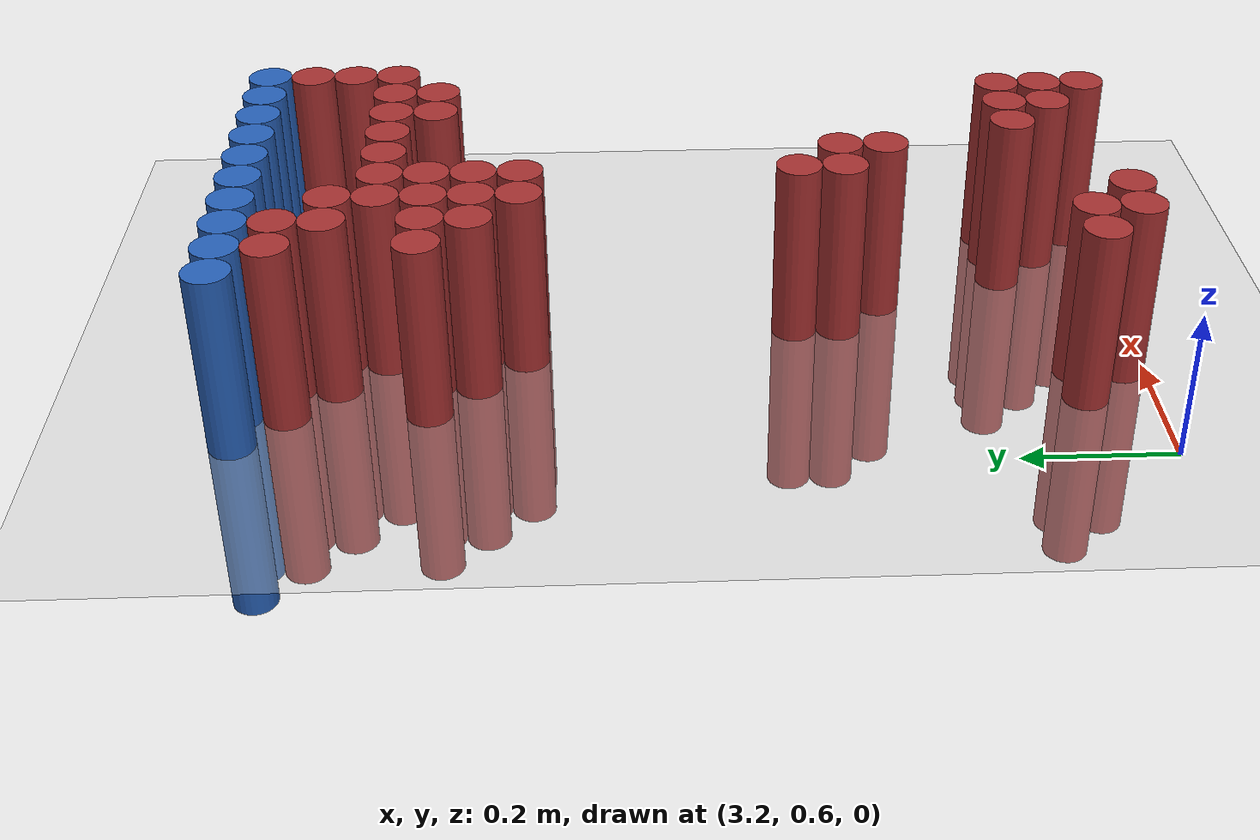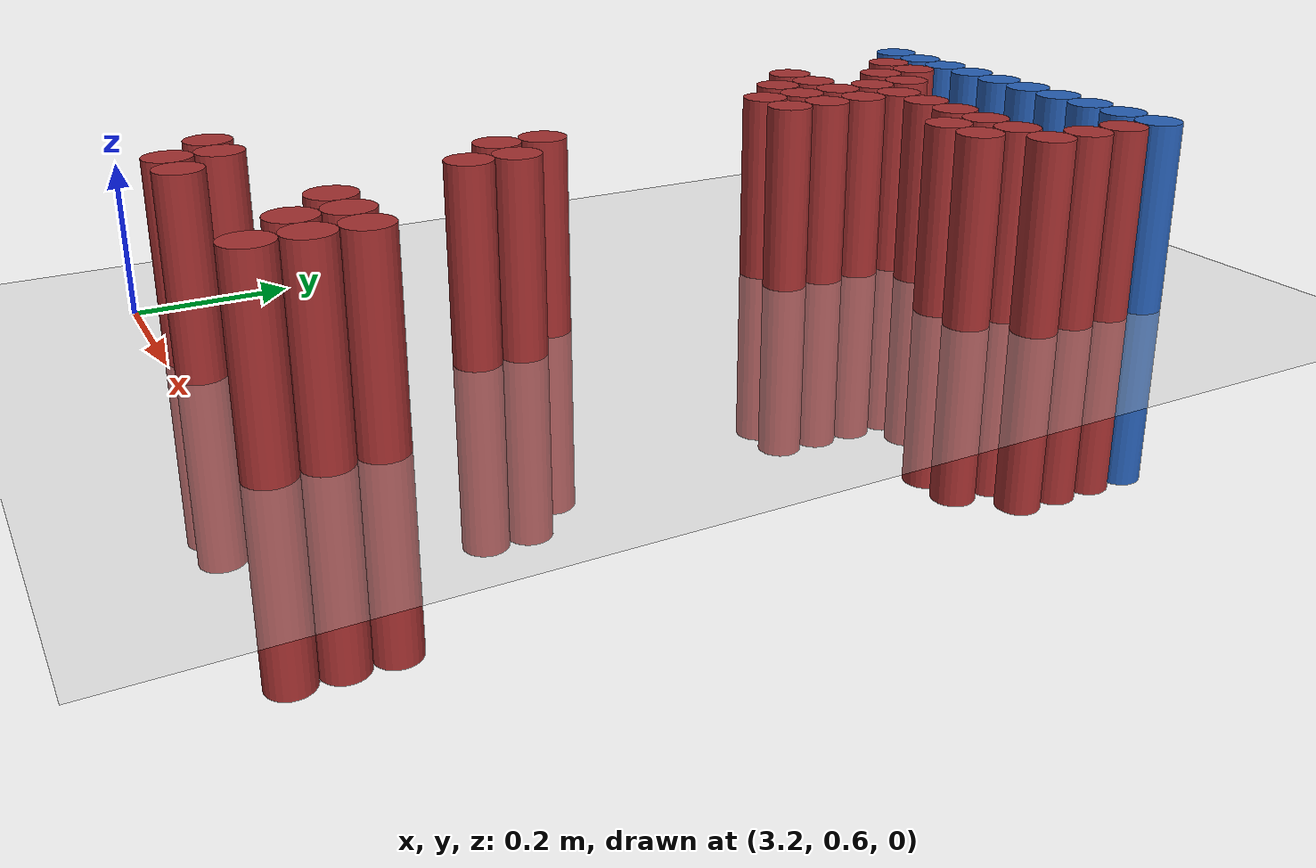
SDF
<sdf version="1.6">
 <world name="default">
  <model name="ground_plane">
   <static>1</static>
   <link name="link">
    <collision name="collision">
     <geometry><plane><normal>0 0 1</normal><size>100 100</size></plane></geometry>
     <surface><friction><ode><mu>100</mu><mu2>50</mu2></ode></friction></surface>
    </collision>
    <visual name="visual">
     <cast_shadows>0</cast_shadows>
     <geometry><plane><normal>0 0 1</normal><size>100 100</size></plane></geometry>
     <material>
      <script><uri>file://media/materials/scripts/gazebo.material</uri><name>Gazebo/Grey</name></script>
     </material>
    </visual>
   </link>
  </model>
  <model name="unit_cylinder_115">
   <static>1</static>
   <pose>3.270000 1.770000 0.000000 0.000000 0.000000 0.000000</pose>
   <link name="link">
    <inertial>
     <mass>1</mass>
     <inertia><ixx>0.145833</ixx><ixy>0</ixy><ixz>0</ixz><iyy>0.145833</iyy><iyz>0</iyz><izz>0.125</izz></inertia>
    </inertial>
    <collision name="collision">
     <geometry><cylinder><radius>0.030000</radius><length>0.5</length></cylinder></geometry>
    </collision>
    <visual name="visual">
     <geometry><cylinder><radius>0.030000</radius><length>0.5</length></cylinder></geometry>
     <material>
      <ambient>0.152000 0.379000 0.720000 1</ambient>
      <diffuse>0.152000 0.379000 0.720000 1</diffuse>
     </material>
     <material>
      <script><name>Gazebo/Grey</name><uri>file://media/materials/scripts/gazebo.material</uri></script>
     </material>
    </visual>
   </link>
  </model>
  <model name="unit_cylinder_116">
   <static>1</static>
   <pose>3.330000 1.770000 0.000000 0.000000 0.000000 0.000000</pose>
   <link name="link">
    <inertial>
     <mass>1</mass>
     <inertia><ixx>0.145833</ixx><ixy>0</ixy><ixz>0</ixz><iyy>0.145833</iyy><iyz>0</iyz><izz>0.125</izz></inertia>
    </inertial>
    <collision name="collision">
     <geometry><cylinder><radius>0.030000</radius><length>0.5</length></cylinder></geometry>
    </collision>
    <visual name="visual">
     <geometry><cylinder><radius>0.030000</radius><length>0.5</length></cylinder></geometry>
     <material>
      <ambient>0.152000 0.379000 0.720000 1</ambient>
      <diffuse>0.152000 0.379000 0.720000 1</diffuse>
     </material>
     <material>
      <script><name>Gazebo/Grey</name><uri>file://media/materials/scripts/gazebo.material</uri></script>
     </material>
    </visual>
   </link>
  </model>
  <model name="unit_cylinder_117">
   <static>1</static>
   <pose>3.390000 1.770000 0.000000 0.000000 0.000000 0.000000</pose>
   <link name="link">
    <inertial>
     <mass>1</mass>
     <inertia><ixx>0.145833</ixx><ixy>0</ixy><ixz>0</ixz><iyy>0.145833</iyy><iyz>0</iyz><izz>0.125</izz></inertia>
    </inertial>
    <collision name="collision">
     <geometry><cylinder><radius>0.030000</radius><length>0.5</length></cylinder></geometry>
    </collision>
    <visual name="visual">
     <geometry><cylinder><radius>0.030000</radius><length>0.5</length></cylinder></geometry>
     <material>
      <ambient>0.152000 0.379000 0.720000 1</ambient>
      <diffuse>0.152000 0.379000 0.720000 1</diffuse>
     </material>
     <material>
      <script><name>Gazebo/Grey</name><uri>file://media/materials/scripts/gazebo.material</uri></script>
     </material>
    </visual>
   </link>
  </model>
  <model name="unit_cylinder_118">
   <static>1</static>
   <pose>3.450000 1.770000 0.000000 0.000000 0.000000 0.000000</pose>
   <link name="link">
    <inertial>
     <mass>1</mass>
     <inertia><ixx>0.145833</ixx><ixy>0</ixy><ixz>0</ixz><iyy>0.145833</iyy><iyz>0</iyz><izz>0.125</izz></inertia>
    </inertial>
    <collision name="collision">
     <geometry><cylinder><radius>0.030000</radius><length>0.5</length></cylinder></geometry>
    </collision>
    <visual name="visual">
     <geometry><cylinder><radius>0.030000</radius><length>0.5</length></cylinder></geometry>
     <material>
      <ambient>0.152000 0.379000 0.720000 1</ambient>
      <diffuse>0.152000 0.379000 0.720000 1</diffuse>
     </material>
     <material>
      <script><name>Gazebo/Grey</name><uri>file://media/materials/scripts/gazebo.material</uri></script>
     </material>
    </visual>
   </link>
  </model>
  <model name="unit_cylinder_119">
   <static>1</static>
   <pose>3.510000 1.770000 0.000000 0.000000 0.000000 0.000000</pose>
   <link name="link">
    <inertial>
     <mass>1</mass>
     <inertia><ixx>0.145833</ixx><ixy>0</ixy><ixz>0</ixz><iyy>0.145833</iyy><iyz>0</iyz><izz>0.125</izz></inertia>
    </inertial>
    <collision name="collision">
     <geometry><cylinder><radius>0.030000</radius><length>0.5</length></cylinder></geometry>
    </collision>
    <visual name="visual">
     <geometry><cylinder><radius>0.030000</radius><length>0.5</length></cylinder></geometry>
     <material>
      <ambient>0.152000 0.379000 0.720000 1</ambient>
      <diffuse>0.152000 0.379000 0.720000 1</diffuse>
     </material>
     <material>
      <script><name>Gazebo/Grey</name><uri>file://media/materials/scripts/gazebo.material</uri></script>
     </material>
    </visual>
   </link>
  </model>
  <model name="unit_cylinder_120">
   <static>1</static>
   <pose>3.570000 1.770000 0.000000 0.000000 0.000000 0.000000</pose>
   <link name="link">
    <inertial>
     <mass>1</mass>
     <inertia><ixx>0.145833</ixx><ixy>0</ixy><ixz>0</ixz><iyy>0.145833</iyy><iyz>0</iyz><izz>0.125</izz></inertia>
    </inertial>
    <collision name="collision">
     <geometry><cylinder><radius>0.030000</radius><length>0.5</length></cylinder></geometry>
    </collision>
    <visual name="visual">
     <geometry><cylinder><radius>0.030000</radius><length>0.5</length></cylinder></geometry>
     <material>
      <ambient>0.152000 0.379000 0.720000 1</ambient>
      <diffuse>0.152000 0.379000 0.720000 1</diffuse>
     </material>
     <material>
      <script><name>Gazebo/Grey</name><uri>file://media/materials/scripts/gazebo.material</uri></script>
     </material>
    </visual>
   </link>
  </model>
  <model name="unit_cylinder_121">
   <static>1</static>
   <pose>3.630000 1.770000 0.000000 0.000000 0.000000 0.000000</pose>
   <link name="link">
    <inertial>
     <mass>1</mass>
     <inertia><ixx>0.145833</ixx><ixy>0</ixy><ixz>0</ixz><iyy>0.145833</iyy><iyz>0</iyz><izz>0.125</izz></inertia>
    </inertial>
    <collision name="collision">
     <geometry><cylinder><radius>0.030000</radius><length>0.5</length></cylinder></geometry>
    </collision>
    <visual name="visual">
     <geometry><cylinder><radius>0.030000</radius><length>0.5</length></cylinder></geometry>
     <material>
      <ambient>0.152000 0.379000 0.720000 1</ambient>
      <diffuse>0.152000 0.379000 0.720000 1</diffuse>
     </material>
     <material>
      <script><name>Gazebo/Grey</name><uri>file://media/materials/scripts/gazebo.material</uri></script>
     </material>
    </visual>
   </link>
  </model>
  <model name="unit_cylinder_122">
   <static>1</static>
   <pose>3.690000 1.770000 0.000000 0.000000 0.000000 0.000000</pose>
   <link name="link">
    <inertial>
     <mass>1</mass>
     <inertia><ixx>0.145833</ixx><ixy>0</ixy><ixz>0</ixz><iyy>0.145833</iyy><iyz>0</iyz><izz>0.125</izz></inertia>
    </inertial>
    <collision name="collision">
     <geometry><cylinder><radius>0.030000</radius><length>0.5</length></cylinder></geometry>
    </collision>
    <visual name="visual">
     <geometry><cylinder><radius>0.030000</radius><length>0.5</length></cylinder></geometry>
     <material>
      <ambient>0.152000 0.379000 0.720000 1</ambient>
      <diffuse>0.152000 0.379000 0.720000 1</diffuse>
     </material>
     <material>
      <script><name>Gazebo/Grey</name><uri>file://media/materials/scripts/gazebo.material</uri></script>
     </material>
    </visual>
   </link>
  </model>
  <model name="unit_cylinder_123">
   <static>1</static>
   <pose>3.750000 1.770000 0.000000 0.000000 0.000000 0.000000</pose>
   <link name="link">
    <inertial>
     <mass>1</mass>
     <inertia><ixx>0.145833</ixx><ixy>0</ixy><ixz>0</ixz><iyy>0.145833</iyy><iyz>0</iyz><izz>0.125</izz></inertia>
    </inertial>
    <collision name="collision">
     <geometry><cylinder><radius>0.030000</radius><length>0.5</length></cylinder></geometry>
    </collision>
    <visual name="visual">
     <geometry><cylinder><radius>0.030000</radius><length>0.5</length></cylinder></geometry>
     <material>
      <ambient>0.152000 0.379000 0.720000 1</ambient>
      <diffuse>0.152000 0.379000 0.720000 1</diffuse>
     </material>
     <material>
      <script><name>Gazebo/Grey</name><uri>file://media/materials/scripts/gazebo.material</uri></script>
     </material>
    </visual>
   </link>
  </model>
  <model name="unit_cylinder_124">
   <static>1</static>
   <pose>3.810000 1.770000 0.000000 0.000000 0.000000 0.000000</pose>
   <link name="link">
    <inertial>
     <mass>1</mass>
     <inertia><ixx>0.145833</ixx><ixy>0</ixy><ixz>0</ixz><iyy>0.145833</iyy><iyz>0</iyz><izz>0.125</izz></inertia>
    </inertial>
    <collision name="collision">
     <geometry><cylinder><radius>0.030000</radius><length>0.5</length></cylinder></geometry>
    </collision>
    <visual name="visual">
     <geometry><cylinder><radius>0.030000</radius><length>0.5</length></cylinder></geometry>
     <material>
      <ambient>0.152000 0.379000 0.720000 1</ambient>
      <diffuse>0.152000 0.379000 0.720000 1</diffuse>
     </material>
     <material>
      <script><name>Gazebo/Grey</name><uri>file://media/materials/scripts/gazebo.material</uri></script>
     </material>
    </visual>
   </link>
  </model>
  <model name="unit_cylinder_138">
   <static>1</static>
   <pose>3.330000 1.710000 0.000000 0.000000 0.000000 0.000000</pose>
   <link name="link">
    <inertial>
     <mass>1</mass>
     <inertia><ixx>0.145833</ixx><ixy>0</ixy><ixz>0</ixz><iyy>0.145833</iyy><iyz>0</iyz><izz>0.125</izz></inertia>
    </inertial>
    <collision name="collision">
     <geometry><cylinder><radius>0.030000</radius><length>0.5</length></cylinder></geometry>
    </collision>
    <visual name="visual">
     <geometry><cylinder><radius>0.030000</radius><length>0.5</length></cylinder></geometry>
     <material>
      <ambient>0.648000 0.192000 0.192000 1</ambient>
      <diffuse>0.648000 0.192000 0.192000 1</diffuse>
     </material>
     <material>
      <script><name>Gazebo/Grey</name><uri>file://media/materials/scripts/gazebo.material</uri></script>
     </material>
    </visual>
   </link>
  </model>
  <model name="unit_cylinder_139">
   <static>1</static>
   <pose>3.390000 1.710000 0.000000 0.000000 0.000000 0.000000</pose>
   <link name="link">
    <inertial>
     <mass>1</mass>
     <inertia><ixx>0.145833</ixx><ixy>0</ixy><ixz>0</ixz><iyy>0.145833</iyy><iyz>0</iyz><izz>0.125</izz></inertia>
    </inertial>
    <collision name="collision">
     <geometry><cylinder><radius>0.030000</radius><length>0.5</length></cylinder></geometry>
    </collision>
    <visual name="visual">
     <geometry><cylinder><radius>0.030000</radius><length>0.5</length></cylinder></geometry>
     <material>
      <ambient>0.648000 0.192000 0.192000 1</ambient>
      <diffuse>0.648000 0.192000 0.192000 1</diffuse>
     </material>
     <material>
      <script><name>Gazebo/Grey</name><uri>file://media/materials/scripts/gazebo.material</uri></script>
     </material>
    </visual>
   </link>
  </model>
  <model name="unit_cylinder_140">
   <static>1</static>
   <pose>3.810000 1.710000 0.000000 0.000000 0.000000 0.000000</pose>
   <link name="link">
    <inertial>
     <mass>1</mass>
     <inertia><ixx>0.145833</ixx><ixy>0</ixy><ixz>0</ixz><iyy>0.145833</iyy><iyz>0</iyz><izz>0.125</izz></inertia>
    </inertial>
    <collision name="collision">
     <geometry><cylinder><radius>0.030000</radius><length>0.5</length></cylinder></geometry>
    </collision>
    <visual name="visual">
     <geometry><cylinder><radius>0.030000</radius><length>0.5</length></cylinder></geometry>
     <material>
      <ambient>0.648000 0.192000 0.192000 1</ambient>
      <diffuse>0.648000 0.192000 0.192000 1</diffuse>
     </material>
     <material>
      <script><name>Gazebo/Grey</name><uri>file://media/materials/scripts/gazebo.material</uri></script>
     </material>
    </visual>
   </link>
  </model>
  <model name="unit_cylinder_150">
   <static>1</static>
   <pose>3.390000 1.650000 0.000000 0.000000 0.000000 0.000000</pose>
   <link name="link">
    <inertial>
     <mass>1</mass>
     <inertia><ixx>0.145833</ixx><ixy>0</ixy><ixz>0</ixz><iyy>0.145833</iyy><iyz>0</iyz><izz>0.125</izz></inertia>
    </inertial>
    <collision name="collision">
     <geometry><cylinder><radius>0.030000</radius><length>0.5</length></cylinder></geometry>
    </collision>
    <visual name="visual">
     <geometry><cylinder><radius>0.030000</radius><length>0.5</length></cylinder></geometry>
     <material>
      <ambient>0.648000 0.192000 0.192000 1</ambient>
      <diffuse>0.648000 0.192000 0.192000 1</diffuse>
     </material>
     <material>
      <script><name>Gazebo/Grey</name><uri>file://media/materials/scripts/gazebo.material</uri></script>
     </material>
    </visual>
   </link>
  </model>
  <model name="unit_cylinder_151">
   <static>1</static>
   <pose>3.450000 1.650000 0.000000 0.000000 0.000000 0.000000</pose>
   <link name="link">
    <inertial>
     <mass>1</mass>
     <inertia><ixx>0.145833</ixx><ixy>0</ixy><ixz>0</ixz><iyy>0.145833</iyy><iyz>0</iyz><izz>0.125</izz></inertia>
    </inertial>
    <collision name="collision">
     <geometry><cylinder><radius>0.030000</radius><length>0.5</length></cylinder></geometry>
    </collision>
    <visual name="visual">
     <geometry><cylinder><radius>0.030000</radius><length>0.5</length></cylinder></geometry>
     <material>
      <ambient>0.648000 0.192000 0.192000 1</ambient>
      <diffuse>0.648000 0.192000 0.192000 1</diffuse>
     </material>
     <material>
      <script><name>Gazebo/Grey</name><uri>file://media/materials/scripts/gazebo.material</uri></script>
     </material>
    </visual>
   </link>
  </model>
  <model name="unit_cylinder_152">
   <static>1</static>
   <pose>3.810000 1.650000 0.000000 0.000000 0.000000 0.000000</pose>
   <link name="link">
    <inertial>
     <mass>1</mass>
     <inertia><ixx>0.145833</ixx><ixy>0</ixy><ixz>0</ixz><iyy>0.145833</iyy><iyz>0</iyz><izz>0.125</izz></inertia>
    </inertial>
    <collision name="collision">
     <geometry><cylinder><radius>0.030000</radius><length>0.5</length></cylinder></geometry>
    </collision>
    <visual name="visual">
     <geometry><cylinder><radius>0.030000</radius><length>0.5</length></cylinder></geometry>
     <material>
      <ambient>0.648000 0.192000 0.192000 1</ambient>
      <diffuse>0.648000 0.192000 0.192000 1</diffuse>
     </material>
     <material>
      <script><name>Gazebo/Grey</name><uri>file://media/materials/scripts/gazebo.material</uri></script>
     </material>
    </visual>
   </link>
  </model>
  <model name="unit_cylinder_157">
   <static>1</static>
   <pose>3.450000 1.590000 0.000000 0.000000 0.000000 0.000000</pose>
   <link name="link">
    <inertial>
     <mass>1</mass>
     <inertia><ixx>0.145833</ixx><ixy>0</ixy><ixz>0</ixz><iyy>0.145833</iyy><iyz>0</iyz><izz>0.125</izz></inertia>
    </inertial>
    <collision name="collision">
     <geometry><cylinder><radius>0.030000</radius><length>0.5</length></cylinder></geometry>
    </collision>
    <visual name="visual">
     <geometry><cylinder><radius>0.030000</radius><length>0.5</length></cylinder></geometry>
     <material>
      <ambient>0.648000 0.192000 0.192000 1</ambient>
      <diffuse>0.648000 0.192000 0.192000 1</diffuse>
     </material>
     <material>
      <script><name>Gazebo/Grey</name><uri>file://media/materials/scripts/gazebo.material</uri></script>
     </material>
    </visual>
   </link>
  </model>
  <model name="unit_cylinder_158">
   <static>1</static>
   <pose>3.510000 1.590000 0.000000 0.000000 0.000000 0.000000</pose>
   <link name="link">
    <inertial>
     <mass>1</mass>
     <inertia><ixx>0.145833</ixx><ixy>0</ixy><ixz>0</ixz><iyy>0.145833</iyy><iyz>0</iyz><izz>0.125</izz></inertia>
    </inertial>
    <collision name="collision">
     <geometry><cylinder><radius>0.030000</radius><length>0.5</length></cylinder></geometry>
    </collision>
    <visual name="visual">
     <geometry><cylinder><radius>0.030000</radius><length>0.5</length></cylinder></geometry>
     <material>
      <ambient>0.648000 0.192000 0.192000 1</ambient>
      <diffuse>0.648000 0.192000 0.192000 1</diffuse>
     </material>
     <material>
      <script><name>Gazebo/Grey</name><uri>file://media/materials/scripts/gazebo.material</uri></script>
     </material>
    </visual>
   </link>
  </model>
  <model name="unit_cylinder_159">
   <static>1</static>
   <pose>3.570000 1.590000 0.000000 0.000000 0.000000 0.000000</pose>
   <link name="link">
    <inertial>
     <mass>1</mass>
     <inertia><ixx>0.145833</ixx><ixy>0</ixy><ixz>0</ixz><iyy>0.145833</iyy><iyz>0</iyz><izz>0.125</izz></inertia>
    </inertial>
    <collision name="collision">
     <geometry><cylinder><radius>0.030000</radius><length>0.5</length></cylinder></geometry>
    </collision>
    <visual name="visual">
     <geometry><cylinder><radius>0.030000</radius><length>0.5</length></cylinder></geometry>
     <material>
      <ambient>0.648000 0.192000 0.192000 1</ambient>
      <diffuse>0.648000 0.192000 0.192000 1</diffuse>
     </material>
     <material>
      <script><name>Gazebo/Grey</name><uri>file://media/materials/scripts/gazebo.material</uri></script>
     </material>
    </visual>
   </link>
  </model>
  <model name="unit_cylinder_160">
   <static>1</static>
   <pose>3.630000 1.590000 0.000000 0.000000 0.000000 0.000000</pose>
   <link name="link">
    <inertial>
     <mass>1</mass>
     <inertia><ixx>0.145833</ixx><ixy>0</ixy><ixz>0</ixz><iyy>0.145833</iyy><iyz>0</iyz><izz>0.125</izz></inertia>
    </inertial>
    <collision name="collision">
     <geometry><cylinder><radius>0.030000</radius><length>0.5</length></cylinder></geometry>
    </collision>
    <visual name="visual">
     <geometry><cylinder><radius>0.030000</radius><length>0.5</length></cylinder></geometry>
     <material>
      <ambient>0.648000 0.192000 0.192000 1</ambient>
      <diffuse>0.648000 0.192000 0.192000 1</diffuse>
     </material>
     <material>
      <script><name>Gazebo/Grey</name><uri>file://media/materials/scripts/gazebo.material</uri></script>
     </material>
    </visual>
   </link>
  </model>
  <model name="unit_cylinder_161">
   <static>1</static>
   <pose>3.690000 1.590000 0.000000 0.000000 0.000000 0.000000</pose>
   <link name="link">
    <inertial>
     <mass>1</mass>
     <inertia><ixx>0.145833</ixx><ixy>0</ixy><ixz>0</ixz><iyy>0.145833</iyy><iyz>0</iyz><izz>0.125</izz></inertia>
    </inertial>
    <collision name="collision">
     <geometry><cylinder><radius>0.030000</radius><length>0.5</length></cylinder></geometry>
    </collision>
    <visual name="visual">
     <geometry><cylinder><radius>0.030000</radius><length>0.5</length></cylinder></geometry>
     <material>
      <ambient>0.648000 0.192000 0.192000 1</ambient>
      <diffuse>0.648000 0.192000 0.192000 1</diffuse>
     </material>
     <material>
      <script><name>Gazebo/Grey</name><uri>file://media/materials/scripts/gazebo.material</uri></script>
     </material>
    </visual>
   </link>
  </model>
  <model name="unit_cylinder_162">
   <static>1</static>
   <pose>3.750000 1.590000 0.000000 0.000000 0.000000 0.000000</pose>
   <link name="link">
    <inertial>
     <mass>1</mass>
     <inertia><ixx>0.145833</ixx><ixy>0</ixy><ixz>0</ixz><iyy>0.145833</iyy><iyz>0</iyz><izz>0.125</izz></inertia>
    </inertial>
    <collision name="collision">
     <geometry><cylinder><radius>0.030000</radius><length>0.5</length></cylinder></geometry>
    </collision>
    <visual name="visual">
     <geometry><cylinder><radius>0.030000</radius><length>0.5</length></cylinder></geometry>
     <material>
      <ambient>0.648000 0.192000 0.192000 1</ambient>
      <diffuse>0.648000 0.192000 0.192000 1</diffuse>
     </material>
     <material>
      <script><name>Gazebo/Grey</name><uri>file://media/materials/scripts/gazebo.material</uri></script>
     </material>
    </visual>
   </link>
  </model>
  <model name="unit_cylinder_163">
   <static>1</static>
   <pose>3.810000 1.590000 0.000000 0.000000 0.000000 0.000000</pose>
   <link name="link">
    <inertial>
     <mass>1</mass>
     <inertia><ixx>0.145833</ixx><ixy>0</ixy><ixz>0</ixz><iyy>0.145833</iyy><iyz>0</iyz><izz>0.125</izz></inertia>
    </inertial>
    <collision name="collision">
     <geometry><cylinder><radius>0.030000</radius><length>0.5</length></cylinder></geometry>
    </collision>
    <visual name="visual">
     <geometry><cylinder><radius>0.030000</radius><length>0.5</length></cylinder></geometry>
     <material>
      <ambient>0.648000 0.192000 0.192000 1</ambient>
      <diffuse>0.648000 0.192000 0.192000 1</diffuse>
     </material>
     <material>
      <script><name>Gazebo/Grey</name><uri>file://media/materials/scripts/gazebo.material</uri></script>
     </material>
    </visual>
   </link>
  </model>
  <model name="unit_cylinder_165">
   <static>1</static>
   <pose>3.330000 1.530000 0.000000 0.000000 0.000000 0.000000</pose>
   <link name="link">
    <inertial>
     <mass>1</mass>
     <inertia><ixx>0.145833</ixx><ixy>0</ixy><ixz>0</ixz><iyy>0.145833</iyy><iyz>0</iyz><izz>0.125</izz></inertia>
    </inertial>
    <collision name="collision">
     <geometry><cylinder><radius>0.030000</radius><length>0.5</length></cylinder></geometry>
    </collision>
    <visual name="visual">
     <geometry><cylinder><radius>0.030000</radius><length>0.5</length></cylinder></geometry>
     <material>
      <ambient>0.648000 0.192000 0.192000 1</ambient>
      <diffuse>0.648000 0.192000 0.192000 1</diffuse>
     </material>
     <material>
      <script><name>Gazebo/Grey</name><uri>file://media/materials/scripts/gazebo.material</uri></script>
     </material>
    </visual>
   </link>
  </model>
  <model name="unit_cylinder_166">
   <static>1</static>
   <pose>3.390000 1.530000 0.000000 0.000000 0.000000 0.000000</pose>
   <link name="link">
    <inertial>
     <mass>1</mass>
     <inertia><ixx>0.145833</ixx><ixy>0</ixy><ixz>0</ixz><iyy>0.145833</iyy><iyz>0</iyz><izz>0.125</izz></inertia>
    </inertial>
    <collision name="collision">
     <geometry><cylinder><radius>0.030000</radius><length>0.5</length></cylinder></geometry>
    </collision>
    <visual name="visual">
     <geometry><cylinder><radius>0.030000</radius><length>0.5</length></cylinder></geometry>
     <material>
      <ambient>0.648000 0.192000 0.192000 1</ambient>
      <diffuse>0.648000 0.192000 0.192000 1</diffuse>
     </material>
     <material>
      <script><name>Gazebo/Grey</name><uri>file://media/materials/scripts/gazebo.material</uri></script>
     </material>
    </visual>
   </link>
  </model>
  <model name="unit_cylinder_167">
   <static>1</static>
   <pose>3.450000 1.530000 0.000000 0.000000 0.000000 0.000000</pose>
   <link name="link">
    <inertial>
     <mass>1</mass>
     <inertia><ixx>0.145833</ixx><ixy>0</ixy><ixz>0</ixz><iyy>0.145833</iyy><iyz>0</iyz><izz>0.125</izz></inertia>
    </inertial>
    <collision name="collision">
     <geometry><cylinder><radius>0.030000</radius><length>0.5</length></cylinder></geometry>
    </collision>
    <visual name="visual">
     <geometry><cylinder><radius>0.030000</radius><length>0.5</length></cylinder></geometry>
     <material>
      <ambient>0.648000 0.192000 0.192000 1</ambient>
      <diffuse>0.648000 0.192000 0.192000 1</diffuse>
     </material>
     <material>
      <script><name>Gazebo/Grey</name><uri>file://media/materials/scripts/gazebo.material</uri></script>
     </material>
    </visual>
   </link>
  </model>
  <model name="unit_cylinder_168">
   <static>1</static>
   <pose>3.510000 1.530000 0.000000 0.000000 0.000000 0.000000</pose>
   <link name="link">
    <inertial>
     <mass>1</mass>
     <inertia><ixx>0.145833</ixx><ixy>0</ixy><ixz>0</ixz><iyy>0.145833</iyy><iyz>0</iyz><izz>0.125</izz></inertia>
    </inertial>
    <collision name="collision">
     <geometry><cylinder><radius>0.030000</radius><length>0.5</length></cylinder></geometry>
    </collision>
    <visual name="visual">
     <geometry><cylinder><radius>0.030000</radius><length>0.5</length></cylinder></geometry>
     <material>
      <ambient>0.648000 0.192000 0.192000 1</ambient>
      <diffuse>0.648000 0.192000 0.192000 1</diffuse>
     </material>
     <material>
      <script><name>Gazebo/Grey</name><uri>file://media/materials/scripts/gazebo.material</uri></script>
     </material>
    </visual>
   </link>
  </model>
  <model name="unit_cylinder_169">
   <static>1</static>
   <pose>3.690000 1.530000 0.000000 0.000000 0.000000 0.000000</pose>
   <link name="link">
    <inertial>
     <mass>1</mass>
     <inertia><ixx>0.145833</ixx><ixy>0</ixy><ixz>0</ixz><iyy>0.145833</iyy><iyz>0</iyz><izz>0.125</izz></inertia>
    </inertial>
    <collision name="collision">
     <geometry><cylinder><radius>0.030000</radius><length>0.5</length></cylinder></geometry>
    </collision>
    <visual name="visual">
     <geometry><cylinder><radius>0.030000</radius><length>0.5</length></cylinder></geometry>
     <material>
      <ambient>0.648000 0.192000 0.192000 1</ambient>
      <diffuse>0.648000 0.192000 0.192000 1</diffuse>
     </material>
     <material>
      <script><name>Gazebo/Grey</name><uri>file://media/materials/scripts/gazebo.material</uri></script>
     </material>
    </visual>
   </link>
  </model>
  <model name="unit_cylinder_170">
   <static>1</static>
   <pose>3.750000 1.530000 0.000000 0.000000 0.000000 0.000000</pose>
   <link name="link">
    <inertial>
     <mass>1</mass>
     <inertia><ixx>0.145833</ixx><ixy>0</ixy><ixz>0</ixz><iyy>0.145833</iyy><iyz>0</iyz><izz>0.125</izz></inertia>
    </inertial>
    <collision name="collision">
     <geometry><cylinder><radius>0.030000</radius><length>0.5</length></cylinder></geometry>
    </collision>
    <visual name="visual">
     <geometry><cylinder><radius>0.030000</radius><length>0.5</length></cylinder></geometry>
     <material>
      <ambient>0.648000 0.192000 0.192000 1</ambient>
      <diffuse>0.648000 0.192000 0.192000 1</diffuse>
     </material>
     <material>
      <script><name>Gazebo/Grey</name><uri>file://media/materials/scripts/gazebo.material</uri></script>
     </material>
    </visual>
   </link>
  </model>
  <model name="unit_cylinder_171">
   <static>1</static>
   <pose>3.390000 1.470000 0.000000 0.000000 0.000000 0.000000</pose>
   <link name="link">
    <inertial>
     <mass>1</mass>
     <inertia><ixx>0.145833</ixx><ixy>0</ixy><ixz>0</ixz><iyy>0.145833</iyy><iyz>0</iyz><izz>0.125</izz></inertia>
    </inertial>
    <collision name="collision">
     <geometry><cylinder><radius>0.030000</radius><length>0.5</length></cylinder></geometry>
    </collision>
    <visual name="visual">
     <geometry><cylinder><radius>0.030000</radius><length>0.5</length></cylinder></geometry>
     <material>
      <ambient>0.648000 0.192000 0.192000 1</ambient>
      <diffuse>0.648000 0.192000 0.192000 1</diffuse>
     </material>
     <material>
      <script><name>Gazebo/Grey</name><uri>file://media/materials/scripts/gazebo.material</uri></script>
     </material>
    </visual>
   </link>
  </model>
  <model name="unit_cylinder_172">
   <static>1</static>
   <pose>3.450000 1.470000 0.000000 0.000000 0.000000 0.000000</pose>
   <link name="link">
    <inertial>
     <mass>1</mass>
     <inertia><ixx>0.145833</ixx><ixy>0</ixy><ixz>0</ixz><iyy>0.145833</iyy><iyz>0</iyz><izz>0.125</izz></inertia>
    </inertial>
    <collision name="collision">
     <geometry><cylinder><radius>0.030000</radius><length>0.5</length></cylinder></geometry>
    </collision>
    <visual name="visual">
     <geometry><cylinder><radius>0.030000</radius><length>0.5</length></cylinder></geometry>
     <material>
      <ambient>0.648000 0.192000 0.192000 1</ambient>
      <diffuse>0.648000 0.192000 0.192000 1</diffuse>
     </material>
     <material>
      <script><name>Gazebo/Grey</name><uri>file://media/materials/scripts/gazebo.material</uri></script>
     </material>
    </visual>
   </link>
  </model>
  <model name="unit_cylinder_173">
   <static>1</static>
   <pose>3.510000 1.470000 0.000000 0.000000 0.000000 0.000000</pose>
   <link name="link">
    <inertial>
     <mass>1</mass>
     <inertia><ixx>0.145833</ixx><ixy>0</ixy><ixz>0</ixz><iyy>0.145833</iyy><iyz>0</iyz><izz>0.125</izz></inertia>
    </inertial>
    <collision name="collision">
     <geometry><cylinder><radius>0.030000</radius><length>0.5</length></cylinder></geometry>
    </collision>
    <visual name="visual">
     <geometry><cylinder><radius>0.030000</radius><length>0.5</length></cylinder></geometry>
     <material>
      <ambient>0.648000 0.192000 0.192000 1</ambient>
      <diffuse>0.648000 0.192000 0.192000 1</diffuse>
     </material>
     <material>
      <script><name>Gazebo/Grey</name><uri>file://media/materials/scripts/gazebo.material</uri></script>
     </material>
    </visual>
   </link>
  </model>
  <model name="unit_cylinder_174">
   <static>1</static>
   <pose>3.450000 1.410000 0.000000 0.000000 0.000000 0.000000</pose>
   <link name="link">
    <inertial>
     <mass>1</mass>
     <inertia><ixx>0.145833</ixx><ixy>0</ixy><ixz>0</ixz><iyy>0.145833</iyy><iyz>0</iyz><izz>0.125</izz></inertia>
    </inertial>
    <collision name="collision">
     <geometry><cylinder><radius>0.030000</radius><length>0.5</length></cylinder></geometry>
    </collision>
    <visual name="visual">
     <geometry><cylinder><radius>0.030000</radius><length>0.5</length></cylinder></geometry>
     <material>
      <ambient>0.648000 0.192000 0.192000 1</ambient>
      <diffuse>0.648000 0.192000 0.192000 1</diffuse>
     </material>
     <material>
      <script><name>Gazebo/Grey</name><uri>file://media/materials/scripts/gazebo.material</uri></script>
     </material>
    </visual>
   </link>
  </model>
  <model name="unit_cylinder_175">
   <static>1</static>
   <pose>3.510000 1.410000 0.000000 0.000000 0.000000 0.000000</pose>
   <link name="link">
    <inertial>
     <mass>1</mass>
     <inertia><ixx>0.145833</ixx><ixy>0</ixy><ixz>0</ixz><iyy>0.145833</iyy><iyz>0</iyz><izz>0.125</izz></inertia>
    </inertial>
    <collision name="collision">
     <geometry><cylinder><radius>0.030000</radius><length>0.5</length></cylinder></geometry>
    </collision>
    <visual name="visual">
     <geometry><cylinder><radius>0.030000</radius><length>0.5</length></cylinder></geometry>
     <material>
      <ambient>0.648000 0.192000 0.192000 1</ambient>
      <diffuse>0.648000 0.192000 0.192000 1</diffuse>
     </material>
     <material>
      <script><name>Gazebo/Grey</name><uri>file://media/materials/scripts/gazebo.material</uri></script>
     </material>
    </visual>
   </link>
  </model>
  <model name="unit_cylinder_190">
   <static>1</static>
   <pose>3.510000 1.050000 0.000000 0.000000 0.000000 0.000000</pose>
   <link name="link">
    <inertial>
     <mass>1</mass>
     <inertia><ixx>0.145833</ixx><ixy>0</ixy><ixz>0</ixz><iyy>0.145833</iyy><iyz>0</iyz><izz>0.125</izz></inertia>
    </inertial>
    <collision name="collision">
     <geometry><cylinder><radius>0.030000</radius><length>0.5</length></cylinder></geometry>
    </collision>
    <visual name="visual">
     <geometry><cylinder><radius>0.030000</radius><length>0.5</length></cylinder></geometry>
     <material>
      <ambient>0.648000 0.192000 0.192000 1</ambient>
      <diffuse>0.648000 0.192000 0.192000 1</diffuse>
     </material>
     <material>
      <script><name>Gazebo/Grey</name><uri>file://media/materials/scripts/gazebo.material</uri></script>
     </material>
    </visual>
   </link>
  </model>
  <model name="unit_cylinder_194">
   <static>1</static>
   <pose>3.510000 0.990000 0.000000 0.000000 0.000000 0.000000</pose>
   <link name="link">
    <inertial>
     <mass>1</mass>
     <inertia><ixx>0.145833</ixx><ixy>0</ixy><ixz>0</ixz><iyy>0.145833</iyy><iyz>0</iyz><izz>0.125</izz></inertia>
    </inertial>
    <collision name="collision">
     <geometry><cylinder><radius>0.030000</radius><length>0.5</length></cylinder></geometry>
    </collision>
    <visual name="visual">
     <geometry><cylinder><radius>0.030000</radius><length>0.5</length></cylinder></geometry>
     <material>
      <ambient>0.648000 0.192000 0.192000 1</ambient>
      <diffuse>0.648000 0.192000 0.192000 1</diffuse>
     </material>
     <material>
      <script><name>Gazebo/Grey</name><uri>file://media/materials/scripts/gazebo.material</uri></script>
     </material>
    </visual>
   </link>
  </model>
  <model name="unit_cylinder_195">
   <static>1</static>
   <pose>3.570000 0.990000 0.000000 0.000000 0.000000 0.000000</pose>
   <link name="link">
    <inertial>
     <mass>1</mass>
     <inertia><ixx>0.145833</ixx><ixy>0</ixy><ixz>0</ixz><iyy>0.145833</iyy><iyz>0</iyz><izz>0.125</izz></inertia>
    </inertial>
    <collision name="collision">
     <geometry><cylinder><radius>0.030000</radius><length>0.5</length></cylinder></geometry>
    </collision>
    <visual name="visual">
     <geometry><cylinder><radius>0.030000</radius><length>0.5</length></cylinder></geometry>
     <material>
      <ambient>0.648000 0.192000 0.192000 1</ambient>
      <diffuse>0.648000 0.192000 0.192000 1</diffuse>
     </material>
     <material>
      <script><name>Gazebo/Grey</name><uri>file://media/materials/scripts/gazebo.material</uri></script>
     </material>
    </visual>
   </link>
  </model>
  <model name="unit_cylinder_198">
   <static>1</static>
   <pose>3.570000 0.930000 0.000000 0.000000 0.000000 0.000000</pose>
   <link name="link">
    <inertial>
     <mass>1</mass>
     <inertia><ixx>0.145833</ixx><ixy>0</ixy><ixz>0</ixz><iyy>0.145833</iyy><iyz>0</iyz><izz>0.125</izz></inertia>
    </inertial>
    <collision name="collision">
     <geometry><cylinder><radius>0.030000</radius><length>0.5</length></cylinder></geometry>
    </collision>
    <visual name="visual">
     <geometry><cylinder><radius>0.030000</radius><length>0.5</length></cylinder></geometry>
     <material>
      <ambient>0.648000 0.192000 0.192000 1</ambient>
      <diffuse>0.648000 0.192000 0.192000 1</diffuse>
     </material>
     <material>
      <script><name>Gazebo/Grey</name><uri>file://media/materials/scripts/gazebo.material</uri></script>
     </material>
    </visual>
   </link>
  </model>
  <model name="unit_cylinder_210">
   <static>1</static>
   <pose>3.630000 0.750000 0.000000 0.000000 0.000000 0.000000</pose>
   <link name="link">
    <inertial>
     <mass>1</mass>
     <inertia><ixx>0.145833</ixx><ixy>0</ixy><ixz>0</ixz><iyy>0.145833</iyy><iyz>0</iyz><izz>0.125</izz></inertia>
    </inertial>
    <collision name="collision">
     <geometry><cylinder><radius>0.030000</radius><length>0.5</length></cylinder></geometry>
    </collision>
    <visual name="visual">
     <geometry><cylinder><radius>0.030000</radius><length>0.5</length></cylinder></geometry>
     <material>
      <ambient>0.648000 0.192000 0.192000 1</ambient>
      <diffuse>0.648000 0.192000 0.192000 1</diffuse>
     </material>
     <material>
      <script><name>Gazebo/Grey</name><uri>file://media/materials/scripts/gazebo.material</uri></script>
     </material>
    </visual>
   </link>
  </model>
  <model name="unit_cylinder_211">
   <static>1</static>
   <pose>3.690000 0.750000 0.000000 0.000000 0.000000 0.000000</pose>
   <link name="link">
    <inertial>
     <mass>1</mass>
     <inertia><ixx>0.145833</ixx><ixy>0</ixy><ixz>0</ixz><iyy>0.145833</iyy><iyz>0</iyz><izz>0.125</izz></inertia>
    </inertial>
    <collision name="collision">
     <geometry><cylinder><radius>0.030000</radius><length>0.5</length></cylinder></geometry>
    </collision>
    <visual name="visual">
     <geometry><cylinder><radius>0.030000</radius><length>0.5</length></cylinder></geometry>
     <material>
      <ambient>0.648000 0.192000 0.192000 1</ambient>
      <diffuse>0.648000 0.192000 0.192000 1</diffuse>
     </material>
     <material>
      <script><name>Gazebo/Grey</name><uri>file://media/materials/scripts/gazebo.material</uri></script>
     </material>
    </visual>
   </link>
  </model>
  <model name="unit_cylinder_212">
   <static>1</static>
   <pose>3.750000 0.750000 0.000000 0.000000 0.000000 0.000000</pose>
   <link name="link">
    <inertial>
     <mass>1</mass>
     <inertia><ixx>0.145833</ixx><ixy>0</ixy><ixz>0</ixz><iyy>0.145833</iyy><iyz>0</iyz><izz>0.125</izz></inertia>
    </inertial>
    <collision name="collision">
     <geometry><cylinder><radius>0.030000</radius><length>0.5</length></cylinder></geometry>
    </collision>
    <visual name="visual">
     <geometry><cylinder><radius>0.030000</radius><length>0.5</length></cylinder></geometry>
     <material>
      <ambient>0.648000 0.192000 0.192000 1</ambient>
      <diffuse>0.648000 0.192000 0.192000 1</diffuse>
     </material>
     <material>
      <script><name>Gazebo/Grey</name><uri>file://media/materials/scripts/gazebo.material</uri></script>
     </material>
    </visual>
   </link>
  </model>
  <model name="unit_cylinder_215">
   <static>1</static>
   <pose>3.330000 0.690000 0.000000 0.000000 0.000000 0.000000</pose>
   <link name="link">
    <inertial>
     <mass>1</mass>
     <inertia><ixx>0.145833</ixx><ixy>0</ixy><ixz>0</ixz><iyy>0.145833</iyy><iyz>0</iyz><izz>0.125</izz></inertia>
    </inertial>
    <collision name="collision">
     <geometry><cylinder><radius>0.030000</radius><length>0.5</length></cylinder></geometry>
    </collision>
    <visual name="visual">
     <geometry><cylinder><radius>0.030000</radius><length>0.5</length></cylinder></geometry>
     <material>
      <ambient>0.648000 0.192000 0.192000 1</ambient>
      <diffuse>0.648000 0.192000 0.192000 1</diffuse>
     </material>
     <material>
      <script><name>Gazebo/Grey</name><uri>file://media/materials/scripts/gazebo.material</uri></script>
     </material>
    </visual>
   </link>
  </model>
  <model name="unit_cylinder_216">
   <static>1</static>
   <pose>3.390000 0.690000 0.000000 0.000000 0.000000 0.000000</pose>
   <link name="link">
    <inertial>
     <mass>1</mass>
     <inertia><ixx>0.145833</ixx><ixy>0</ixy><ixz>0</ixz><iyy>0.145833</iyy><iyz>0</iyz><izz>0.125</izz></inertia>
    </inertial>
    <collision name="collision">
     <geometry><cylinder><radius>0.030000</radius><length>0.5</length></cylinder></geometry>
    </collision>
    <visual name="visual">
     <geometry><cylinder><radius>0.030000</radius><length>0.5</length></cylinder></geometry>
     <material>
      <ambient>0.648000 0.192000 0.192000 1</ambient>
      <diffuse>0.648000 0.192000 0.192000 1</diffuse>
     </material>
     <material>
      <script><name>Gazebo/Grey</name><uri>file://media/materials/scripts/gazebo.material</uri></script>
     </material>
    </visual>
   </link>
  </model>
  <model name="unit_cylinder_217">
   <static>1</static>
   <pose>3.690000 0.690000 0.000000 0.000000 0.000000 0.000000</pose>
   <link name="link">
    <inertial>
     <mass>1</mass>
     <inertia><ixx>0.145833</ixx><ixy>0</ixy><ixz>0</ixz><iyy>0.145833</iyy><iyz>0</iyz><izz>0.125</izz></inertia>
    </inertial>
    <collision name="collision">
     <geometry><cylinder><radius>0.030000</radius><length>0.5</length></cylinder></geometry>
    </collision>
    <visual name="visual">
     <geometry><cylinder><radius>0.030000</radius><length>0.5</length></cylinder></geometry>
     <material>
      <ambient>0.648000 0.192000 0.192000 1</ambient>
      <diffuse>0.648000 0.192000 0.192000 1</diffuse>
     </material>
     <material>
      <script><name>Gazebo/Grey</name><uri>file://media/materials/scripts/gazebo.material</uri></script>
     </material>
    </visual>
   </link>
  </model>
  <model name="unit_cylinder_218">
   <static>1</static>
   <pose>3.750000 0.690000 0.000000 0.000000 0.000000 0.000000</pose>
   <link name="link">
    <inertial>
     <mass>1</mass>
     <inertia><ixx>0.145833</ixx><ixy>0</ixy><ixz>0</ixz><iyy>0.145833</iyy><iyz>0</iyz><izz>0.125</izz></inertia>
    </inertial>
    <collision name="collision">
     <geometry><cylinder><radius>0.030000</radius><length>0.5</length></cylinder></geometry>
    </collision>
    <visual name="visual">
     <geometry><cylinder><radius>0.030000</radius><length>0.5</length></cylinder></geometry>
     <material>
      <ambient>0.648000 0.192000 0.192000 1</ambient>
      <diffuse>0.648000 0.192000 0.192000 1</diffuse>
     </material>
     <material>
      <script><name>Gazebo/Grey</name><uri>file://media/materials/scripts/gazebo.material</uri></script>
     </material>
    </visual>
   </link>
  </model>
  <model name="unit_cylinder_223">
   <static>1</static>
   <pose>3.390000 0.630000 0.000000 0.000000 0.000000 0.000000</pose>
   <link name="link">
    <inertial>
     <mass>1</mass>
     <inertia><ixx>0.145833</ixx><ixy>0</ixy><ixz>0</ixz><iyy>0.145833</iyy><iyz>0</iyz><izz>0.125</izz></inertia>
    </inertial>
    <collision name="collision">
     <geometry><cylinder><radius>0.030000</radius><length>0.5</length></cylinder></geometry>
    </collision>
    <visual name="visual">
     <geometry><cylinder><radius>0.030000</radius><length>0.5</length></cylinder></geometry>
     <material>
      <ambient>0.648000 0.192000 0.192000 1</ambient>
      <diffuse>0.648000 0.192000 0.192000 1</diffuse>
     </material>
     <material>
      <script><name>Gazebo/Grey</name><uri>file://media/materials/scripts/gazebo.material</uri></script>
     </material>
    </visual>
   </link>
  </model>
  <model name="unit_cylinder_224">
   <static>1</static>
   <pose>3.450000 0.630000 0.000000 0.000000 0.000000 0.000000</pose>
   <link name="link">
    <inertial>
     <mass>1</mass>
     <inertia><ixx>0.145833</ixx><ixy>0</ixy><ixz>0</ixz><iyy>0.145833</iyy><iyz>0</iyz><izz>0.125</izz></inertia>
    </inertial>
    <collision name="collision">
     <geometry><cylinder><radius>0.030000</radius><length>0.5</length></cylinder></geometry>
    </collision>
    <visual name="visual">
     <geometry><cylinder><radius>0.030000</radius><length>0.5</length></cylinder></geometry>
     <material>
      <ambient>0.648000 0.192000 0.192000 1</ambient>
      <diffuse>0.648000 0.192000 0.192000 1</diffuse>
     </material>
     <material>
      <script><name>Gazebo/Grey</name><uri>file://media/materials/scripts/gazebo.material</uri></script>
     </material>
    </visual>
   </link>
  </model>
  <model name="unit_cylinder_225">
   <static>1</static>
   <pose>3.750000 0.630000 0.000000 0.000000 0.000000 0.000000</pose>
   <link name="link">
    <inertial>
     <mass>1</mass>
     <inertia><ixx>0.145833</ixx><ixy>0</ixy><ixz>0</ixz><iyy>0.145833</iyy><iyz>0</iyz><izz>0.125</izz></inertia>
    </inertial>
    <collision name="collision">
     <geometry><cylinder><radius>0.030000</radius><length>0.5</length></cylinder></geometry>
    </collision>
    <visual name="visual">
     <geometry><cylinder><radius>0.030000</radius><length>0.5</length></cylinder></geometry>
     <material>
      <ambient>0.648000 0.192000 0.192000 1</ambient>
      <diffuse>0.648000 0.192000 0.192000 1</diffuse>
     </material>
     <material>
      <script><name>Gazebo/Grey</name><uri>file://media/materials/scripts/gazebo.material</uri></script>
     </material>
    </visual>
   </link>
  </model>
 </world>
</sdf>
